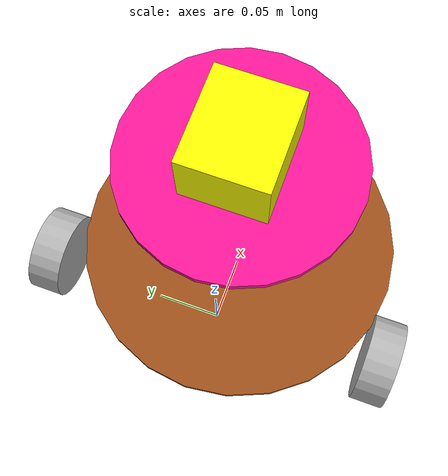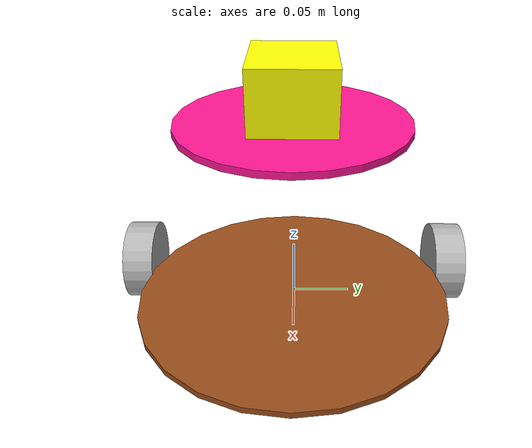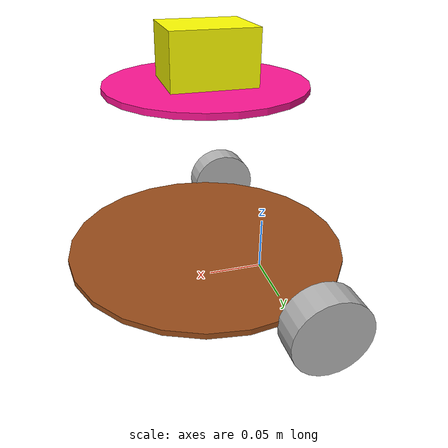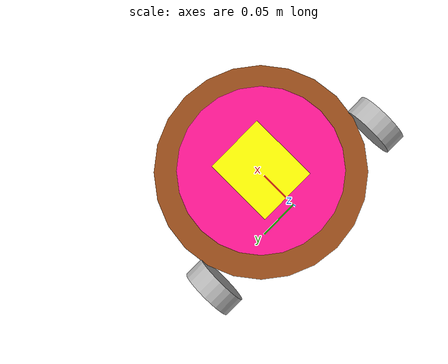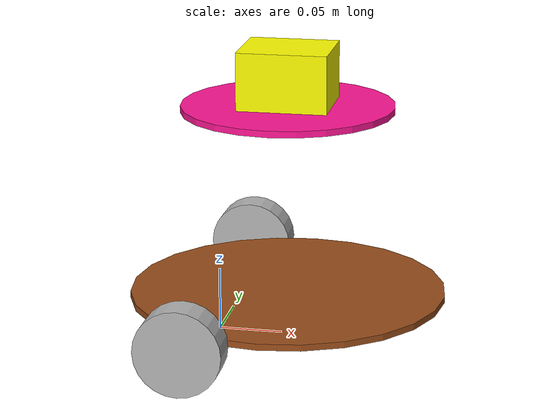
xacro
<?xml version="1.0"?>
<robot name="my_robot" xmlns:xacro="http://www.ros.org/wiki/xacro">

    <xacro:include filename="$(find real_car_description)/urdf/common_properties.xacro" />
    <xacro:include filename="$(find real_car_description)/urdf/mobile_base.xacro" />
    <xacro:include filename="$(find real_car_description)/urdf/mobile_base.ros2_control.xacro" />

</robot>

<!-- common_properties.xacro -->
<robot xmlns:xacro="http://www.ros.org/wiki/xacro">

    <material name="green">
        <color rgba="0 0.6 0 1" />
    </material>

    <material name="gray">
        <color rgba="0.7 0.7 0.7 1" />
    </material>

    <material name="yellow">
        <color rgba="1 1 0 1" />
    </material>

    <material name="pink">
        <color rgba="1.0 0.08 0.58 1.0" />
    </material>

    <material name="wood">
        <color rgba="0.60 0.30 0.10 1.0" />
    </material>

    <xacro:macro name="box_inertia" params="m x y z o_xyz o_rpy">
        <inertial>
            <mass value="${m}" />
            <origin xyz="${o_xyz}" rpy="${o_rpy}" />
            <inertia ixx="${(m/12) * (z*z + y*y)}" ixy="0" ixz="0"
                    iyy="${(m/12) * (x*x + z*z)}" iyz="0"
                    izz="${(m/12) * (x*x + y*y)}" />
        </inertial>
    </xacro:macro>

    <xacro:macro name="cylinder_inertia" params="m r l o_xyz o_rpy">
        <inertial>
            <mass value="${m}" />
            <origin xyz="${o_xyz}" rpy="${o_rpy}" />
            <inertia ixx="${(m/12) * (3*r*r + l*l)}" ixy="0" ixz="0"
                    iyy="${(m/12) * (3*r*r + l*l)}" iyz="0"
                    izz="${(m/2) * (r*r)}" />
        </inertial>
    </xacro:macro>

    <xacro:macro name="sphere_inertia" params="m r o_xyz o_rpy">
        <inertial>
            <mass value="${m}" />
            <origin xyz="${o_xyz}" rpy="${o_rpy}" />
            <inertia ixx="${(2/5) * m * r * r}" ixy="0" ixz="0"
                    iyy="${(2/5) * m * r * r}" iyz="0"
                    izz="${(2/5) * m * r * r}" />
        </inertial>
    </xacro:macro>

</robot>

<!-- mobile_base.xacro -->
<robot xmlns:xacro="http://www.ros.org/wiki/xacro">

    <xacro:property name="base_height" value="0.15" />
    <xacro:property name="base_radius" value="0.125" />
    <xacro:property name="base_height_visual" value="0.005" />
    <xacro:property name="wheel_radius" value="0.0335" />
    <xacro:property name="wheel_length" value="0.025" />

    <xacro:property name="wheel_seperationdiv2" value="0.1336" />
    <!-- cai nay khac so voi cai gazebo vi thuc te xe phai cat bo phan bi dinh, (cai nay chi la hien thi nen khong sao) -->

    <xacro:property name="wheel_0point_y" value="0.055581" />

    <xacro:property name="lidar_length" value="0.07" />
    <xacro:property name="lidar_width" value="0.06" />
    <xacro:property name="lidar_height" value="0.05" />

    <xacro:property name="base_length" value="0.6" />
    <xacro:property name="base_width" value="0.4" />

    <link name="base_footprint" />

    <link name="base_link">
        <visual>
            <geometry>
                <cylinder radius="${base_radius}" length="${base_height_visual}" />
            </geometry>
                <origin xyz="0 0 ${base_height_visual / 2.0}" rpy="0 0 0" />
            <material name="wood" />
        </visual>
        <collision>
            <geometry>
                <cylinder radius="${base_radius}" length="${base_height}" />
            </geometry>
            <origin xyz="0 0 ${base_height / 2.0}" rpy="0 0 0" />
        </collision>
            <xacro:cylinder_inertia m="1.0" r="${base_radius}" l="${base_height}"
                                    o_xyz="0 0 0" o_rpy="0 0 0" />
    </link>

    <link name="lidar_link">
        <visual>
            <geometry>
                <box size="${lidar_length} ${lidar_width} ${lidar_height}" />
            </geometry>
                <origin xyz="0 0 ${lidar_height / 2.0}" rpy="0 0 0" />
            <material name="yellow" />
        </visual>
        <collision>
            <geometry>
                <box size="${lidar_length} ${lidar_width} ${lidar_height}" />
            </geometry>
            <origin xyz="0 0 ${lidar_height / 2.0}" rpy="0 0 0" />
        </collision>
        <xacro:box_inertia m="0.2" x="${lidar_length}" y="${lidar_width}" z="${lidar_height}"
                           o_xyz="0 0 ${lidar_height / 2.0}" o_rpy="0 0 0" />
    </link>

    <link name="second_base_link">
        <visual>
            <geometry>
                <cylinder radius="${base_radius / 1.5}" length="${base_height_visual}" />
            </geometry>
                <origin xyz="0 0 ${base_height_visual / 2.0}" rpy="0 0 0" />
            <material name="pink" />
        </visual>
    </link>

    <xacro:macro name="wheel_link" params="prefix">
        <link name="${prefix}_wheel_link">
            <visual>
                <geometry>
                    <cylinder radius="${wheel_radius}" length="${wheel_length}" />
                </geometry>
                <origin xyz="0 0 0" rpy="${pi / 2.0} 0 0" />
                <material name="gray" />
            </visual>
            <collision>
                <geometry>
                    <sphere radius="${wheel_radius}" />
                </geometry>
                <origin xyz="0 0 0" rpy="0 0 0" />
            </collision>
            <xacro:cylinder_inertia m="1.0" r="${wheel_radius}" l="${wheel_length}"
                                    o_xyz="0 0 0" o_rpy="${pi / 2.0} 0 0" />
        </link>
    </xacro:macro>

    <xacro:wheel_link prefix="right" />
    <xacro:wheel_link prefix="left" />

    <link name="caster_wheel_link">
        <visual>
            <geometry>
                <sphere radius="${wheel_radius / 2.0}" />
            </geometry>
            <origin xyz="0 0 0" rpy="0 0 0" />
            <material name="gray" />
        </visual>
        <collision>
            <geometry>
                <sphere radius="${wheel_radius / 2.0}" />
            </geometry>
            <origin xyz="0 0 0" rpy="0 0 0" />
        </collision>
        <xacro:sphere_inertia m="0.5" r="${wheel_radius / 2.0}"
                              o_xyz="0 0 0" o_rpy="0 0 0" />
    </link>

    <joint name="base_joint" type="fixed">
        <parent link="base_footprint" />
        <child link="base_link" />
        <origin xyz="${wheel_0point_y}  0 ${wheel_radius}" rpy="0 0 0" />
    </joint>

    <joint name="base_lidar" type="fixed">
        <parent link="base_link" />
        <child link="lidar_link" />
        <origin xyz="0  0 ${base_height}" rpy="0 0 0" />
    </joint>

    <joint name="base_second_base" type="fixed">
        <parent link="base_link" />
        <child link="second_base_link" />
        <origin xyz="0  0 ${base_height}" rpy="0 0 0" />
    </joint>

    <joint name="base_right_wheel_joint" type="continuous">
        <parent link="base_link" />
        <child link="right_wheel_link" />
        <origin xyz="${-wheel_0point_y} ${-(wheel_seperationdiv2) / 1.0} 0" rpy="0 0 0" />
        <axis xyz="0 1 0" />
    </joint>

    <joint name="base_left_wheel_joint" type="continuous">
        <parent link="base_link" />
        <child link="left_wheel_link" />
        <origin xyz="${-wheel_0point_y} ${(wheel_seperationdiv2) / 1.0} 0" rpy="0 0 0" />
        <axis xyz="0 1 0" />
    </joint>

    <joint name="base_caster_wheel_joint" type="fixed">
        <parent link="base_link" />
        <child link="caster_wheel_link" />
        <origin xyz="${base_radius / 2.0} 0 ${-wheel_radius / 2.0}" rpy="0 0 0" />
    </joint>

</robot>
